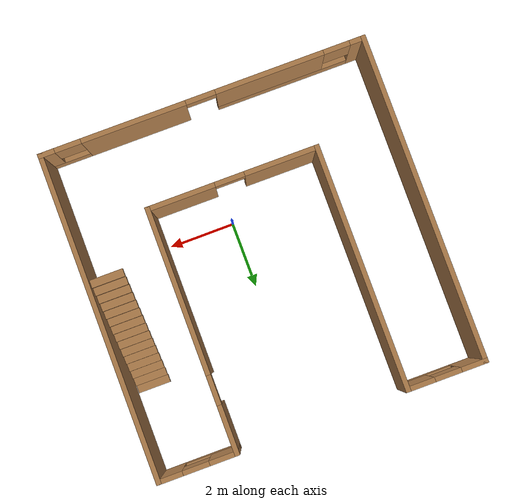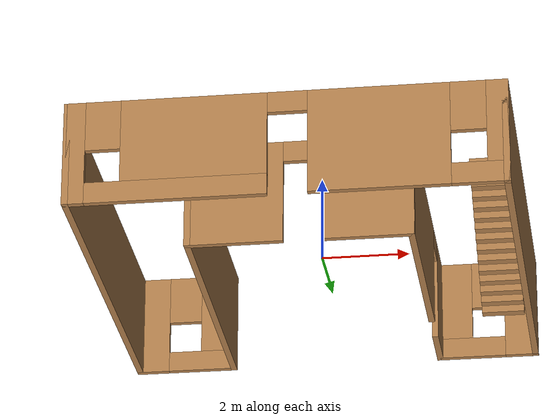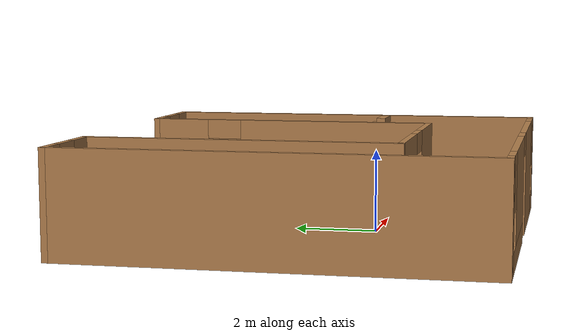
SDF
<?xml version='1.0'?>
<sdf version='1.6'>
  <model name='building'>
    <pose frame=''>-0.417172 1.40474 0 0 -0 0</pose>
    <link name='Stairs_0'>
      <visual name='Stairs_0_Visual_0'>
        <pose frame=''>4.31792 2.29229 0.083333 0 -0 0</pose>
        <geometry>
          <box>
            <size>1 0.233333 0.166667</size>
          </box>
        </geometry>
        <material>
          <script>
            <uri>file://media/materials/scripts/gazebo.material</uri>
            <name>Gazebo/Wood</name>
          </script>
          <ambient>1 1 1 1</ambient>
        </material>
        <meta>
          <layer>0</layer>
        </meta>
      </visual>
      <collision name='Stairs_0_Collision_0'>
        <geometry>
          <box>
            <size>1 0.233333 0.166667</size>
          </box>
        </geometry>
        <pose frame=''>4.31792 2.29229 0.083333 0 -0 0</pose>
      </collision>
      <visual name='Stairs_0_Visual_1'>
        <pose frame=''>4.31792 2.05896 0.25 0 -0 0</pose>
        <geometry>
          <box>
            <size>1 0.233333 0.166667</size>
          </box>
        </geometry>
        <material>
          <script>
            <uri>file://media/materials/scripts/gazebo.material</uri>
            <name>Gazebo/Wood</name>
          </script>
          <ambient>1 1 1 1</ambient>
        </material>
        <meta>
          <layer>0</layer>
        </meta>
      </visual>
      <collision name='Stairs_0_Collision_1'>
        <geometry>
          <box>
            <size>1 0.233333 0.166667</size>
          </box>
        </geometry>
        <pose frame=''>4.31792 2.05896 0.25 0 -0 0</pose>
      </collision>
      <visual name='Stairs_0_Visual_2'>
        <pose frame=''>4.31792 1.82563 0.416667 0 -0 0</pose>
        <geometry>
          <box>
            <size>1 0.233333 0.166667</size>
          </box>
        </geometry>
        <material>
          <script>
            <uri>file://media/materials/scripts/gazebo.material</uri>
            <name>Gazebo/Wood</name>
          </script>
          <ambient>1 1 1 1</ambient>
        </material>
        <meta>
          <layer>0</layer>
        </meta>
      </visual>
      <collision name='Stairs_0_Collision_2'>
        <geometry>
          <box>
            <size>1 0.233333 0.166667</size>
          </box>
        </geometry>
        <pose frame=''>4.31792 1.82563 0.416667 0 -0 0</pose>
      </collision>
      <visual name='Stairs_0_Visual_3'>
        <pose frame=''>4.31792 1.59229 0.583333 0 -0 0</pose>
        <geometry>
          <box>
            <size>1 0.233333 0.166667</size>
          </box>
        </geometry>
        <material>
          <script>
            <uri>file://media/materials/scripts/gazebo.material</uri>
            <name>Gazebo/Wood</name>
          </script>
          <ambient>1 1 1 1</ambient>
        </material>
        <meta>
          <layer>0</layer>
        </meta>
      </visual>
      <collision name='Stairs_0_Collision_3'>
        <geometry>
          <box>
            <size>1 0.233333 0.166667</size>
          </box>
        </geometry>
        <pose frame=''>4.31792 1.59229 0.583333 0 -0 0</pose>
      </collision>
      <visual name='Stairs_0_Visual_4'>
        <pose frame=''>4.31792 1.35896 0.75 0 -0 0</pose>
        <geometry>
          <box>
            <size>1 0.233333 0.166667</size>
          </box>
        </geometry>
        <material>
          <script>
            <uri>file://media/materials/scripts/gazebo.material</uri>
            <name>Gazebo/Wood</name>
          </script>
          <ambient>1 1 1 1</ambient>
        </material>
        <meta>
          <layer>0</layer>
        </meta>
      </visual>
      <collision name='Stairs_0_Collision_4'>
        <geometry>
          <box>
            <size>1 0.233333 0.166667</size>
          </box>
        </geometry>
        <pose frame=''>4.31792 1.35896 0.75 0 -0 0</pose>
      </collision>
      <visual name='Stairs_0_Visual_5'>
        <pose frame=''>4.31792 1.12563 0.916667 0 -0 0</pose>
        <geometry>
          <box>
            <size>1 0.233333 0.166667</size>
          </box>
        </geometry>
        <material>
          <script>
            <uri>file://media/materials/scripts/gazebo.material</uri>
            <name>Gazebo/Wood</name>
          </script>
          <ambient>1 1 1 1</ambient>
        </material>
        <meta>
          <layer>0</layer>
        </meta>
      </visual>
      <collision name='Stairs_0_Collision_5'>
        <geometry>
          <box>
            <size>1 0.233333 0.166667</size>
          </box>
        </geometry>
        <pose frame=''>4.31792 1.12563 0.916667 0 -0 0</pose>
      </collision>
      <visual name='Stairs_0_Visual_6'>
        <pose frame=''>4.31792 0.892293 1.08333 0 -0 0</pose>
        <geometry>
          <box>
            <size>1 0.233333 0.166667</size>
          </box>
        </geometry>
        <material>
          <script>
            <uri>file://media/materials/scripts/gazebo.material</uri>
            <name>Gazebo/Wood</name>
          </script>
          <ambient>1 1 1 1</ambient>
        </material>
        <meta>
          <layer>0</layer>
        </meta>
      </visual>
      <collision name='Stairs_0_Collision_6'>
        <geometry>
          <box>
            <size>1 0.233333 0.166667</size>
          </box>
        </geometry>
        <pose frame=''>4.31792 0.892293 1.08333 0 -0 0</pose>
      </collision>
      <visual name='Stairs_0_Visual_7'>
        <pose frame=''>4.31792 0.658959 1.25 0 -0 0</pose>
        <geometry>
          <box>
            <size>1 0.233333 0.166667</size>
          </box>
        </geometry>
        <material>
          <script>
            <uri>file://media/materials/scripts/gazebo.material</uri>
            <name>Gazebo/Wood</name>
          </script>
          <ambient>1 1 1 1</ambient>
        </material>
        <meta>
          <layer>0</layer>
        </meta>
      </visual>
      <collision name='Stairs_0_Collision_7'>
        <geometry>
          <box>
            <size>1 0.233333 0.166667</size>
          </box>
        </geometry>
        <pose frame=''>4.31792 0.658959 1.25 0 -0 0</pose>
      </collision>
      <visual name='Stairs_0_Visual_8'>
        <pose frame=''>4.31792 0.425626 1.41667 0 -0 0</pose>
        <geometry>
          <box>
            <size>1 0.233333 0.166667</size>
          </box>
        </geometry>
        <material>
          <script>
            <uri>file://media/materials/scripts/gazebo.material</uri>
            <name>Gazebo/Wood</name>
          </script>
          <ambient>1 1 1 1</ambient>
        </material>
        <meta>
          <layer>0</layer>
        </meta>
      </visual>
      <collision name='Stairs_0_Collision_8'>
        <geometry>
          <box>
            <size>1 0.233333 0.166667</size>
          </box>
        </geometry>
        <pose frame=''>4.31792 0.425626 1.41667 0 -0 0</pose>
      </collision>
      <visual name='Stairs_0_Visual_9'>
        <pose frame=''>4.31792 0.192293 1.58333 0 -0 0</pose>
        <geometry>
          <box>
            <size>1 0.233333 0.166667</size>
          </box>
        </geometry>
        <material>
          <script>
            <uri>file://media/materials/scripts/gazebo.material</uri>
            <name>Gazebo/Wood</name>
          </script>
          <ambient>1 1 1 1</ambient>
        </material>
        <meta>
          <layer>0</layer>
        </meta>
      </visual>
      <collision name='Stairs_0_Collision_9'>
        <geometry>
          <box>
            <size>1 0.233333 0.166667</size>
          </box>
        </geometry>
        <pose frame=''>4.31792 0.192293 1.58333 0 -0 0</pose>
      </collision>
      <visual name='Stairs_0_Visual_10'>
        <pose frame=''>4.31792 -0.041041 1.75 0 -0 0</pose>
        <geometry>
          <box>
            <size>1 0.233333 0.166667</size>
          </box>
        </geometry>
        <material>
          <script>
            <uri>file://media/materials/scripts/gazebo.material</uri>
            <name>Gazebo/Wood</name>
          </script>
          <ambient>1 1 1 1</ambient>
        </material>
        <meta>
          <layer>0</layer>
        </meta>
      </visual>
      <collision name='Stairs_0_Collision_10'>
        <geometry>
          <box>
            <size>1 0.233333 0.166667</size>
          </box>
        </geometry>
        <pose frame=''>4.31792 -0.041041 1.75 0 -0 0</pose>
      </collision>
      <visual name='Stairs_0_Visual_11'>
        <pose frame=''>4.31792 -0.274374 1.91667 0 -0 0</pose>
        <geometry>
          <box>
            <size>1 0.233333 0.166667</size>
          </box>
        </geometry>
        <material>
          <script>
            <uri>file://media/materials/scripts/gazebo.material</uri>
            <name>Gazebo/Wood</name>
          </script>
          <ambient>1 1 1 1</ambient>
        </material>
        <meta>
          <layer>0</layer>
        </meta>
      </visual>
      <collision name='Stairs_0_Collision_11'>
        <geometry>
          <box>
            <size>1 0.233333 0.166667</size>
          </box>
        </geometry>
        <pose frame=''>4.31792 -0.274374 1.91667 0 -0 0</pose>
      </collision>
      <visual name='Stairs_0_Visual_12'>
        <pose frame=''>4.31792 -0.507707 2.08333 0 -0 0</pose>
        <geometry>
          <box>
            <size>1 0.233333 0.166667</size>
          </box>
        </geometry>
        <material>
          <script>
            <uri>file://media/materials/scripts/gazebo.material</uri>
            <name>Gazebo/Wood</name>
          </script>
          <ambient>1 1 1 1</ambient>
        </material>
        <meta>
          <layer>0</layer>
        </meta>
      </visual>
      <collision name='Stairs_0_Collision_12'>
        <geometry>
          <box>
            <size>1 0.233333 0.166667</size>
          </box>
        </geometry>
        <pose frame=''>4.31792 -0.507707 2.08333 0 -0 0</pose>
      </collision>
      <visual name='Stairs_0_Visual_13'>
        <pose frame=''>4.31792 -0.741041 2.25 0 -0 0</pose>
        <geometry>
          <box>
            <size>1 0.233333 0.166667</size>
          </box>
        </geometry>
        <material>
          <script>
            <uri>file://media/materials/scripts/gazebo.material</uri>
            <name>Gazebo/Wood</name>
          </script>
          <ambient>1 1 1 1</ambient>
        </material>
        <meta>
          <layer>0</layer>
        </meta>
      </visual>
      <collision name='Stairs_0_Collision_13'>
        <geometry>
          <box>
            <size>1 0.233333 0.166667</size>
          </box>
        </geometry>
        <pose frame=''>4.31792 -0.741041 2.25 0 -0 0</pose>
      </collision>
      <visual name='Stairs_0_Visual_14'>
        <pose frame=''>4.31792 -0.974374 2.41667 0 -0 0</pose>
        <geometry>
          <box>
            <size>1 0.233333 0.166667</size>
          </box>
        </geometry>
        <material>
          <script>
            <uri>file://media/materials/scripts/gazebo.material</uri>
            <name>Gazebo/Wood</name>
          </script>
          <ambient>1 1 1 1</ambient>
        </material>
        <meta>
          <layer>0</layer>
        </meta>
      </visual>
      <collision name='Stairs_0_Collision_14'>
        <geometry>
          <box>
            <size>1 0.233333 0.166667</size>
          </box>
        </geometry>
        <pose frame=''>4.31792 -0.974374 2.41667 0 -0 0</pose>
      </collision>
    </link>
    <link name='Wall_11'>
      <collision name='Wall_11_Collision'>
        <geometry>
          <box>
            <size>10 0.15 2.5</size>
          </box>
        </geometry>
        <pose frame=''>0 0 1.25 0 -0 0</pose>
      </collision>
      <visual name='Wall_11_Visual'>
        <pose frame=''>0 0 1.25 0 -0 0</pose>
        <geometry>
          <box>
            <size>10 0.15 2.5</size>
          </box>
        </geometry>
        <material>
          <script>
            <uri>file://media/materials/scripts/gazebo.material</uri>
            <name>Gazebo/Wood</name>
          </script>
          <ambient>1 1 1 1</ambient>
        </material>
        <meta>
          <layer>0</layer>
        </meta>
      </visual>
      <pose frame=''>-4.925 0 0 0 -0 -1.5708</pose>
    </link>
    <link name='Wall_12'>
      <pose frame=''>0 -4.925 0 0 -0 0</pose>
      <visual name='Wall_12_Visual_0'>
        <pose frame=''>-4.74975 0 1.25 0 -0 0</pose>
        <geometry>
          <box>
            <size>0.500495 0.15 2.5</size>
          </box>
        </geometry>
        <material>
          <script>
            <uri>file://media/materials/scripts/gazebo.material</uri>
            <name>Gazebo/Wood</name>
          </script>
          <ambient>1 1 1 1</ambient>
        </material>
        <meta>
          <layer>0</layer>
        </meta>
      </visual>
      <collision name='Wall_12_Collision_0'>
        <geometry>
          <box>
            <size>0.500495 0.15 2.5</size>
          </box>
        </geometry>
        <pose frame=''>-4.74975 0 1.25 0 -0 0</pose>
      </collision>
      <visual name='Wall_12_Visual_1'>
        <pose frame=''>2.10412 0 1.25 0 -0 0</pose>
        <geometry>
          <box>
            <size>3.19015 0.15 2.5</size>
          </box>
        </geometry>
        <material>
          <script>
            <uri>file://media/materials/scripts/gazebo.material</uri>
            <name>Gazebo/Wood</name>
          </script>
          <ambient>1 1 1 1</ambient>
        </material>
        <meta>
          <layer>0</layer>
        </meta>
      </visual>
      <collision name='Wall_12_Collision_1'>
        <geometry>
          <box>
            <size>3.19015 0.15 2.5</size>
          </box>
        </geometry>
        <pose frame=''>2.10412 0 1.25 0 -0 0</pose>
      </collision>
      <visual name='Wall_12_Visual_2'>
        <pose frame=''>-2.44523 0 0.25 0 -0 0</pose>
        <geometry>
          <box>
            <size>4.10854 0.15 0.5</size>
          </box>
        </geometry>
        <material>
          <script>
            <uri>file://media/materials/scripts/gazebo.material</uri>
            <name>Gazebo/Wood</name>
          </script>
          <ambient>1 1 1 1</ambient>
        </material>
        <meta>
          <layer>0</layer>
        </meta>
      </visual>
      <collision name='Wall_12_Collision_2'>
        <geometry>
          <box>
            <size>4.10854 0.15 0.5</size>
          </box>
        </geometry>
        <pose frame=''>-2.44523 0 0.25 0 -0 0</pose>
      </collision>
      <visual name='Wall_12_Visual_3'>
        <pose frame=''>4.3496 0 0.25 0 -0 0</pose>
        <geometry>
          <box>
            <size>1.30081 0.15 0.5</size>
          </box>
        </geometry>
        <material>
          <script>
            <uri>file://media/materials/scripts/gazebo.material</uri>
            <name>Gazebo/Wood</name>
          </script>
          <ambient>1 1 1 1</ambient>
        </material>
        <meta>
          <layer>0</layer>
        </meta>
      </visual>
      <collision name='Wall_12_Collision_3'>
        <geometry>
          <box>
            <size>1.30081 0.15 0.5</size>
          </box>
        </geometry>
        <pose frame=''>4.3496 0 0.25 0 -0 0</pose>
      </collision>
      <visual name='Wall_12_Visual_4'>
        <pose frame=''>-2.04523 0 1.5 0 -0 0</pose>
        <geometry>
          <box>
            <size>3.30854 0.15 2</size>
          </box>
        </geometry>
        <material>
          <script>
            <uri>file://media/materials/scripts/gazebo.material</uri>
            <name>Gazebo/Wood</name>
          </script>
          <ambient>1 1 1 1</ambient>
        </material>
        <meta>
          <layer>0</layer>
        </meta>
      </visual>
      <collision name='Wall_12_Collision_4'>
        <geometry>
          <box>
            <size>3.30854 0.15 2</size>
          </box>
        </geometry>
        <pose frame=''>-2.04523 0 1.5 0 -0 0</pose>
      </collision>
      <visual name='Wall_12_Visual_5'>
        <pose frame=''>-2.04523 0 1.5 0 -0 0</pose>
        <geometry>
          <box>
            <size>3.30854 0.15 2</size>
          </box>
        </geometry>
        <material>
          <script>
            <uri>file://media/materials/scripts/gazebo.material</uri>
            <name>Gazebo/Wood</name>
          </script>
          <ambient>1 1 1 1</ambient>
        </material>
        <meta>
          <layer>0</layer>
        </meta>
      </visual>
      <collision name='Wall_12_Collision_5'>
        <geometry>
          <box>
            <size>3.30854 0.15 2</size>
          </box>
        </geometry>
        <pose frame=''>-2.04523 0 1.5 0 -0 0</pose>
      </collision>
      <visual name='Wall_12_Visual_6'>
        <pose frame=''>4.7496 0 1.5 0 -0 0</pose>
        <geometry>
          <box>
            <size>0.500808 0.15 2</size>
          </box>
        </geometry>
        <material>
          <script>
            <uri>file://media/materials/scripts/gazebo.material</uri>
            <name>Gazebo/Wood</name>
          </script>
          <ambient>1 1 1 1</ambient>
        </material>
        <meta>
          <layer>0</layer>
        </meta>
      </visual>
      <collision name='Wall_12_Collision_6'>
        <geometry>
          <box>
            <size>0.500808 0.15 2</size>
          </box>
        </geometry>
        <pose frame=''>4.7496 0 1.5 0 -0 0</pose>
      </collision>
      <visual name='Wall_12_Visual_7'>
        <pose frame=''>-4.0995 0 1.9 0 -0 0</pose>
        <geometry>
          <box>
            <size>0.8 0.15 1.2</size>
          </box>
        </geometry>
        <material>
          <script>
            <uri>file://media/materials/scripts/gazebo.material</uri>
            <name>Gazebo/Wood</name>
          </script>
          <ambient>1 1 1 1</ambient>
        </material>
        <meta>
          <layer>0</layer>
        </meta>
      </visual>
      <collision name='Wall_12_Collision_7'>
        <geometry>
          <box>
            <size>0.8 0.15 1.2</size>
          </box>
        </geometry>
        <pose frame=''>-4.0995 0 1.9 0 -0 0</pose>
      </collision>
      <visual name='Wall_12_Visual_8'>
        <pose frame=''>4.09919 0 1.9 0 -0 0</pose>
        <geometry>
          <box>
            <size>0.8 0.15 1.2</size>
          </box>
        </geometry>
        <material>
          <script>
            <uri>file://media/materials/scripts/gazebo.material</uri>
            <name>Gazebo/Wood</name>
          </script>
          <ambient>1 1 1 1</ambient>
        </material>
        <meta>
          <layer>0</layer>
        </meta>
      </visual>
      <collision name='Wall_12_Collision_8'>
        <geometry>
          <box>
            <size>0.8 0.15 1.2</size>
          </box>
        </geometry>
        <pose frame=''>4.09919 0 1.9 0 -0 0</pose>
      </collision>
      <visual name='Wall_12_Visual_9'>
        <pose frame=''>0.059039 0 2.25 0 -0 0</pose>
        <geometry>
          <box>
            <size>0.9 0.15 0.5</size>
          </box>
        </geometry>
        <material>
          <script>
            <uri>file://media/materials/scripts/gazebo.material</uri>
            <name>Gazebo/Wood</name>
          </script>
          <ambient>1 1 1 1</ambient>
        </material>
        <meta>
          <layer>0</layer>
        </meta>
      </visual>
      <collision name='Wall_12_Collision_9'>
        <geometry>
          <box>
            <size>0.9 0.15 0.5</size>
          </box>
        </geometry>
        <pose frame=''>0.059039 0 2.25 0 -0 0</pose>
      </collision>
      <visual name='Wall_12_Visual_10'>
        <pose frame=''>0.059039 0 2.25 0 -0 0</pose>
        <geometry>
          <box>
            <size>0.9 0.15 0.5</size>
          </box>
        </geometry>
        <material>
          <script>
            <uri>file://media/materials/scripts/gazebo.material</uri>
            <name>Gazebo/Wood</name>
          </script>
          <ambient>1 1 1 1</ambient>
        </material>
        <meta>
          <layer>0</layer>
        </meta>
      </visual>
      <collision name='Wall_12_Collision_10'>
        <geometry>
          <box>
            <size>0.9 0.15 0.5</size>
          </box>
        </geometry>
        <pose frame=''>0.059039 0 2.25 0 -0 0</pose>
      </collision>
    </link>
    <link name='Wall_13'>
      <collision name='Wall_13_Collision'>
        <geometry>
          <box>
            <size>10 0.15 2.5</size>
          </box>
        </geometry>
        <pose frame=''>0 0 1.25 0 -0 0</pose>
      </collision>
      <visual name='Wall_13_Visual'>
        <pose frame=''>0 0 1.25 0 -0 0</pose>
        <geometry>
          <box>
            <size>10 0.15 2.5</size>
          </box>
        </geometry>
        <material>
          <script>
            <uri>file://media/materials/scripts/gazebo.material</uri>
            <name>Gazebo/Wood</name>
          </script>
          <ambient>1 1 1 1</ambient>
        </material>
        <meta>
          <layer>0</layer>
        </meta>
      </visual>
      <pose frame=''>4.925 0 0 0 -0 1.5708</pose>
    </link>
    <link name='Wall_14'>
      <pose frame=''>3.75 4.925 0 0 -0 3.14159</pose>
      <visual name='Wall_14_Visual_0'>
        <pose frame=''>-0.846611 0 1.25 0 -0 0</pose>
        <geometry>
          <box>
            <size>0.806778 0.15 2.5</size>
          </box>
        </geometry>
        <material>
          <script>
            <uri>file://media/materials/scripts/gazebo.material</uri>
            <name>Gazebo/Wood</name>
          </script>
          <ambient>1 1 1 1</ambient>
        </material>
        <meta>
          <layer>0</layer>
        </meta>
      </visual>
      <collision name='Wall_14_Collision_0'>
        <geometry>
          <box>
            <size>0.806778 0.15 2.5</size>
          </box>
        </geometry>
        <pose frame=''>-0.846611 0 1.25 0 -0 0</pose>
      </collision>
      <visual name='Wall_14_Visual_1'>
        <pose frame=''>0.403389 0 0.25 0 -0 0</pose>
        <geometry>
          <box>
            <size>1.69322 0.15 0.5</size>
          </box>
        </geometry>
        <material>
          <script>
            <uri>file://media/materials/scripts/gazebo.material</uri>
            <name>Gazebo/Wood</name>
          </script>
          <ambient>1 1 1 1</ambient>
        </material>
        <meta>
          <layer>0</layer>
        </meta>
      </visual>
      <collision name='Wall_14_Collision_1'>
        <geometry>
          <box>
            <size>1.69322 0.15 0.5</size>
          </box>
        </geometry>
        <pose frame=''>0.403389 0 0.25 0 -0 0</pose>
      </collision>
      <visual name='Wall_14_Visual_2'>
        <pose frame=''>0.803389 0 1.5 0 -0 0</pose>
        <geometry>
          <box>
            <size>0.893222 0.15 2</size>
          </box>
        </geometry>
        <material>
          <script>
            <uri>file://media/materials/scripts/gazebo.material</uri>
            <name>Gazebo/Wood</name>
          </script>
          <ambient>1 1 1 1</ambient>
        </material>
        <meta>
          <layer>0</layer>
        </meta>
      </visual>
      <collision name='Wall_14_Collision_2'>
        <geometry>
          <box>
            <size>0.893222 0.15 2</size>
          </box>
        </geometry>
        <pose frame=''>0.803389 0 1.5 0 -0 0</pose>
      </collision>
      <visual name='Wall_14_Visual_3'>
        <pose frame=''>-0.043222 0 1.9 0 -0 0</pose>
        <geometry>
          <box>
            <size>0.8 0.15 1.2</size>
          </box>
        </geometry>
        <material>
          <script>
            <uri>file://media/materials/scripts/gazebo.material</uri>
            <name>Gazebo/Wood</name>
          </script>
          <ambient>1 1 1 1</ambient>
        </material>
        <meta>
          <layer>0</layer>
        </meta>
      </visual>
      <collision name='Wall_14_Collision_3'>
        <geometry>
          <box>
            <size>0.8 0.15 1.2</size>
          </box>
        </geometry>
        <pose frame=''>-0.043222 0 1.9 0 -0 0</pose>
      </collision>
    </link>
    <link name='Wall_16'>
      <pose frame=''>-3.75 4.925 0 0 -0 0</pose>
      <visual name='Wall_16_Visual_0'>
        <pose frame=''>-0.848732 0 1.25 0 -0 0</pose>
        <geometry>
          <box>
            <size>0.802535 0.15 2.5</size>
          </box>
        </geometry>
        <material>
          <script>
            <uri>file://media/materials/scripts/gazebo.material</uri>
            <name>Gazebo/Wood</name>
          </script>
          <ambient>1 1 1 1</ambient>
        </material>
        <meta>
          <layer>0</layer>
        </meta>
      </visual>
      <collision name='Wall_16_Collision_0'>
        <geometry>
          <box>
            <size>0.802535 0.15 2.5</size>
          </box>
        </geometry>
        <pose frame=''>-0.848732 0 1.25 0 -0 0</pose>
      </collision>
      <visual name='Wall_16_Visual_1'>
        <pose frame=''>0.401268 0 0.25 0 -0 0</pose>
        <geometry>
          <box>
            <size>1.69747 0.15 0.5</size>
          </box>
        </geometry>
        <material>
          <script>
            <uri>file://media/materials/scripts/gazebo.material</uri>
            <name>Gazebo/Wood</name>
          </script>
          <ambient>1 1 1 1</ambient>
        </material>
        <meta>
          <layer>0</layer>
        </meta>
      </visual>
      <collision name='Wall_16_Collision_1'>
        <geometry>
          <box>
            <size>1.69747 0.15 0.5</size>
          </box>
        </geometry>
        <pose frame=''>0.401268 0 0.25 0 -0 0</pose>
      </collision>
      <visual name='Wall_16_Visual_2'>
        <pose frame=''>0.801268 0 1.5 0 -0 0</pose>
        <geometry>
          <box>
            <size>0.897465 0.15 2</size>
          </box>
        </geometry>
        <material>
          <script>
            <uri>file://media/materials/scripts/gazebo.material</uri>
            <name>Gazebo/Wood</name>
          </script>
          <ambient>1 1 1 1</ambient>
        </material>
        <meta>
          <layer>0</layer>
        </meta>
      </visual>
      <collision name='Wall_16_Collision_2'>
        <geometry>
          <box>
            <size>0.897465 0.15 2</size>
          </box>
        </geometry>
        <pose frame=''>0.801268 0 1.5 0 -0 0</pose>
      </collision>
      <visual name='Wall_16_Visual_3'>
        <pose frame=''>-0.047465 0 1.9 0 -0 0</pose>
        <geometry>
          <box>
            <size>0.8 0.15 1.2</size>
          </box>
        </geometry>
        <material>
          <script>
            <uri>file://media/materials/scripts/gazebo.material</uri>
            <name>Gazebo/Wood</name>
          </script>
          <ambient>1 1 1 1</ambient>
        </material>
        <meta>
          <layer>0</layer>
        </meta>
      </visual>
      <collision name='Wall_16_Collision_3'>
        <geometry>
          <box>
            <size>0.8 0.15 1.2</size>
          </box>
        </geometry>
        <pose frame=''>-0.047465 0 1.9 0 -0 0</pose>
      </collision>
    </link>
    <link name='Wall_17'>
      <collision name='Wall_17_Collision'>
        <geometry>
          <box>
            <size>7.5 0.15 2.5</size>
          </box>
        </geometry>
        <pose frame=''>0 0 1.25 0 -0 0</pose>
      </collision>
      <visual name='Wall_17_Visual'>
        <pose frame=''>0 0 1.25 0 -0 0</pose>
        <geometry>
          <box>
            <size>7.5 0.15 2.5</size>
          </box>
        </geometry>
        <material>
          <script>
            <uri>file://media/materials/scripts/gazebo.material</uri>
            <name>Gazebo/Wood</name>
          </script>
          <ambient>1 1 1 1</ambient>
        </material>
        <meta>
          <layer>0</layer>
        </meta>
      </visual>
      <pose frame=''>-2.575 1.25 0 0 -0 -1.5708</pose>
    </link>
    <link name='Wall_20'>
      <pose frame=''>2.575 1.25 0 0 -0 -1.5708</pose>
      <visual name='Wall_20_Visual_0'>
        <pose frame=''>-2.9938 0 1.25 0 -0 0</pose>
        <geometry>
          <box>
            <size>1.51239 0.15 2.5</size>
          </box>
        </geometry>
        <material>
          <script>
            <uri>file://media/materials/scripts/gazebo.material</uri>
            <name>Gazebo/Wood</name>
          </script>
          <ambient>1 1 1 1</ambient>
        </material>
        <meta>
          <layer>0</layer>
        </meta>
      </visual>
      <collision name='Wall_20_Collision_0'>
        <geometry>
          <box>
            <size>1.51239 0.15 2.5</size>
          </box>
        </geometry>
        <pose frame=''>-2.9938 0 1.25 0 -0 0</pose>
      </collision>
      <visual name='Wall_20_Visual_1'>
        <pose frame=''>1.2062 0 1.25 0 -0 0</pose>
        <geometry>
          <box>
            <size>5.08761 0.15 2.5</size>
          </box>
        </geometry>
        <material>
          <script>
            <uri>file://media/materials/scripts/gazebo.material</uri>
            <name>Gazebo/Wood</name>
          </script>
          <ambient>1 1 1 1</ambient>
        </material>
        <meta>
          <layer>0</layer>
        </meta>
      </visual>
      <collision name='Wall_20_Collision_1'>
        <geometry>
          <box>
            <size>5.08761 0.15 2.5</size>
          </box>
        </geometry>
        <pose frame=''>1.2062 0 1.25 0 -0 0</pose>
      </collision>
      <visual name='Wall_20_Visual_2'>
        <pose frame=''>-1.78761 0 2.25 0 -0 0</pose>
        <geometry>
          <box>
            <size>0.9 0.15 0.5</size>
          </box>
        </geometry>
        <material>
          <script>
            <uri>file://media/materials/scripts/gazebo.material</uri>
            <name>Gazebo/Wood</name>
          </script>
          <ambient>1 1 1 1</ambient>
        </material>
        <meta>
          <layer>0</layer>
        </meta>
      </visual>
      <collision name='Wall_20_Collision_2'>
        <geometry>
          <box>
            <size>0.9 0.15 0.5</size>
          </box>
        </geometry>
        <pose frame=''>-1.78761 0 2.25 0 -0 0</pose>
      </collision>
    </link>
    <link name='Wall_21'>
      <pose frame=''>0 -2.425 0 0 -0 3.14159</pose>
      <visual name='Wall_21_Visual_0'>
        <pose frame=''>-1.5945 0 1.25 0 -0 0</pose>
        <geometry>
          <box>
            <size>2.111 0.15 2.5</size>
          </box>
        </geometry>
        <material>
          <script>
            <uri>file://media/materials/scripts/gazebo.material</uri>
            <name>Gazebo/Wood</name>
          </script>
          <ambient>1 1 1 1</ambient>
        </material>
        <meta>
          <layer>0</layer>
        </meta>
      </visual>
      <collision name='Wall_21_Collision_0'>
        <geometry>
          <box>
            <size>2.111 0.15 2.5</size>
          </box>
        </geometry>
        <pose frame=''>-1.5945 0 1.25 0 -0 0</pose>
      </collision>
      <visual name='Wall_21_Visual_1'>
        <pose frame=''>1.5055 0 1.25 0 -0 0</pose>
        <geometry>
          <box>
            <size>2.289 0.15 2.5</size>
          </box>
        </geometry>
        <material>
          <script>
            <uri>file://media/materials/scripts/gazebo.material</uri>
            <name>Gazebo/Wood</name>
          </script>
          <ambient>1 1 1 1</ambient>
        </material>
        <meta>
          <layer>0</layer>
        </meta>
      </visual>
      <collision name='Wall_21_Collision_1'>
        <geometry>
          <box>
            <size>2.289 0.15 2.5</size>
          </box>
        </geometry>
        <pose frame=''>1.5055 0 1.25 0 -0 0</pose>
      </collision>
      <visual name='Wall_21_Visual_2'>
        <pose frame=''>-0.089 0 2.25 0 -0 0</pose>
        <geometry>
          <box>
            <size>0.9 0.15 0.5</size>
          </box>
        </geometry>
        <material>
          <script>
            <uri>file://media/materials/scripts/gazebo.material</uri>
            <name>Gazebo/Wood</name>
          </script>
          <ambient>1 1 1 1</ambient>
        </material>
        <meta>
          <layer>0</layer>
        </meta>
      </visual>
      <collision name='Wall_21_Collision_2'>
        <geometry>
          <box>
            <size>0.9 0.15 0.5</size>
          </box>
        </geometry>
        <pose frame=''>-0.089 0 2.25 0 -0 0</pose>
      </collision>
    </link>
    <static>1</static>
  </model>
</sdf>
